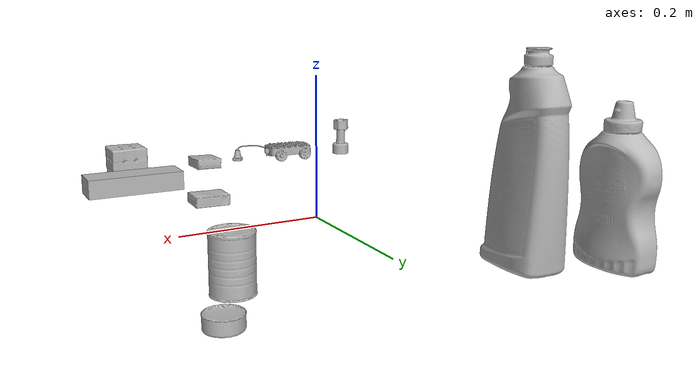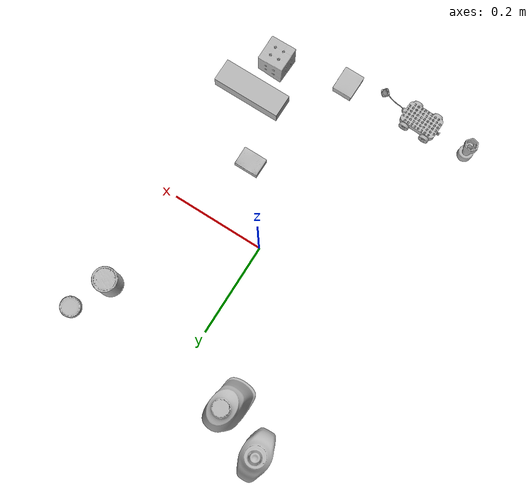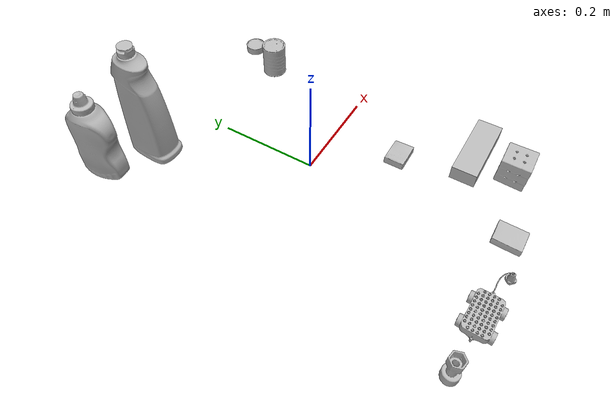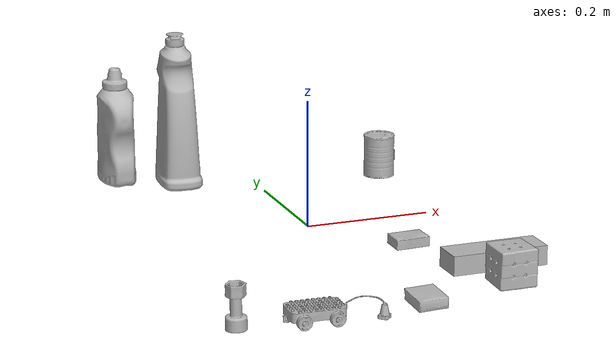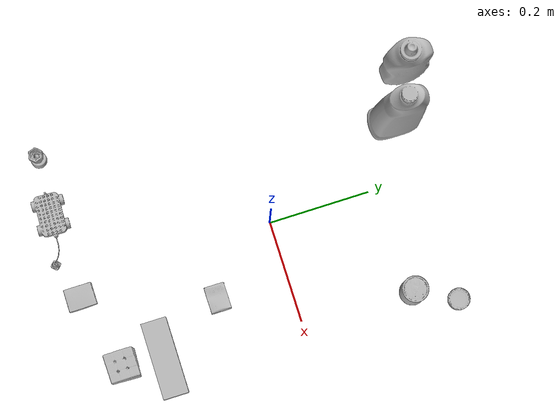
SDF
<?xml version="1.0" ?>
<sdf version="1.4">
  <world name="default">
    <light name="light1" type="point">
      <pose>0 0 1 0 0 0</pose>
      <diffuse>3 3 3 1</diffuse>
      <specular>3 3 3 1</specular>
    </light>
    <light name="light2" type="point">
      <pose>0 0.5 2 0 0 0</pose>
      <diffuse>1 1 1 1</diffuse>
      <specular>1 1 1 1</specular>
    </light>
    <light name="light3" type="point">
      <pose>0 0.5 2 0 0 0</pose>
      <diffuse>3 3 3 1</diffuse>
      <specular>3 3 3 1</specular>
    </light>
    <scene>
      <ambient>0.7 0.7 0.7</ambient>
    </scene>
    <model name="bottle1">
      <link name="link_bottle1">
        <collision name="default">
          <geometry>
            <mesh>
              <uri>model://mustard_bottle/collision_meshes/collision.obj</uri>
              <scale>1.0 1.0 1.0</scale>
            </mesh>
          </geometry>
          <surface>
            <friction>
              <ode>
                <mu>0.5</mu>
                <mu2>0.5</mu2>
              </ode>
            </friction>
          </surface>
        </collision>
        <visual name="default">
          <geometry>
            <mesh>
              <uri>model://mustard_bottle/visual_meshes/visual.dae</uri>
              <scale>1.0 1.0 1.0</scale>
            </mesh>
          </geometry>
        </visual>
        <inertial>
          <mass>0.7866348028182983</mass>
          <pose>0.0005032454500906169 -0.00015647400869056582 -0.0174757931381464 0.00041823249995057767 0.0009465787698991903 0.02485370186883952</pose>
          <inertia>
            <ixx>0.0021843775</ixx>
            <iyy>0.0019166061</iyy>
            <izz>0.0005756938</izz>
            <ixy>0</ixy>
            <ixz>0</ixz>
            <iyz>0</iyz>
          </inertia>
        </inertial>
      </link>
      <pose>-0.2108040750026703 0.3396053612232208 0.09615203738212585 1.3229311704805442e-05 1.4105627105482808e-05 0.03556944717608044</pose>
    </model>
    <model name="bottle2">
      <link name="link_bottle2">
        <collision name="default">
          <geometry>
            <mesh>
              <uri>model://bleach_cleanser/collision_meshes/collision.obj</uri>
              <scale>1.0 1.0 1.0</scale>
            </mesh>
          </geometry>
          <surface>
            <friction>
              <ode>
                <mu>0.5</mu>
                <mu2>0.5</mu2>
              </ode>
            </friction>
          </surface>
        </collision>
        <visual name="default">
          <geometry>
            <mesh>
              <uri>model://bleach_cleanser/visual_meshes/visual.dae</uri>
              <scale>1.0 1.0 1.0</scale>
            </mesh>
          </geometry>
        </visual>
        <inertial>
          <mass>1.5776710510253906</mass>
          <pose>0.00012193183647468686 0.003783883061259985 -0.02442161552608013 -0.07381671362264838 0.0004201168949340897 -0.006875045535038288</pose>
          <inertia>
            <ixx>0.007678755</ixx>
            <iyy>0.0071554743</iyy>
            <izz>0.0013128674</izz>
            <ixy>0</ixy>
            <ixz>0</ixz>
            <iyz>0</iyz>
          </inertia>
        </inertial>
      </link>
      <pose>-0.11920914053916931 0.29016461968421936 0.12576644122600555 -0.0034763713305918605 0.004522792153797232 -0.02645728521903561</pose>
    </model>
    <model name="toy1">
      <link name="link_toy1">
        <collision name="default">
          <geometry>
            <mesh>
              <uri>model://g_lego_duplo/collision_meshes/collision.obj</uri>
              <scale>0.5 0.5 0.5</scale>
            </mesh>
          </geometry>
          <surface>
            <friction>
              <ode>
                <mu>0.5</mu>
                <mu2>0.5</mu2>
              </ode>
            </friction>
          </surface>
        </collision>
        <visual name="default">
          <geometry>
            <mesh>
              <uri>model://g_lego_duplo/visual_meshes/visual.dae</uri>
              <scale>0.5 0.5 0.5</scale>
            </mesh>
          </geometry>
        </visual>
        <inertial>
          <mass>0.06580430269241333</mass>
          <pose>-0.025023844093084335 0.0008777321199886501 0.0019403373589739203 0.010962977320182745 0.038108249742412996 -0.09653031078073558</pose>
          <inertia>
            <ixx>2.3837789e-05</ixx>
            <iyy>7.206929e-05</iyy>
            <izz>9.016138e-05</izz>
            <ixy>0</ixy>
            <ixz>0</ixz>
            <iyz>0</iyz>
          </inertia>
        </inertial>
      </link>
      <pose>-0.10972067713737488 -0.40186965465545654 0.014996823854744434 -6.247243239286998e-05 -0.003688312350474646 -0.038634064938309176</pose>
    </model>
    <model name="toy2">
      <link name="link_toy2">
        <collision name="default">
          <geometry>
            <mesh>
              <uri>model://c_toy_airplane/collision_meshes/collision.obj</uri>
              <scale>1.0 1.0 1.0</scale>
            </mesh>
          </geometry>
          <surface>
            <friction>
              <ode>
                <mu>0.5</mu>
                <mu2>0.5</mu2>
              </ode>
            </friction>
          </surface>
        </collision>
        <visual name="default">
          <geometry>
            <mesh>
              <uri>model://c_toy_airplane/visual_meshes/visual.dae</uri>
              <scale>1.0 1.0 1.0</scale>
            </mesh>
          </geometry>
        </visual>
        <inertial>
          <mass>0.012545601464807987</mass>
          <pose>-0.00023024262918625027 -4.4310368707556336e-07 -0.0060805282555520535 -0.006192226732466636 -0.01679790977646328 0.7654621556572541</pose>
          <inertia>
            <ixx>5.760684e-06</ixx>
            <iyy>5.744425e-06</iyy>
            <izz>1.3524945e-06</izz>
            <ixy>0</ixy>
            <ixz>0</ixz>
            <iyz>0</iyz>
          </inertia>
        </inertial>
      </link>
      <pose>-0.24999184906482697 -0.3899896740913391 0.0335124246776104 -0.00013407715628568583 -1.56142196310315e-05 0.07182204183745079</pose>
    </model>
    <model name="can1">
      <link name="link_can1">
        <collision name="default">
          <geometry>
            <mesh>
              <uri>model://tuna_fish_can/collision_meshes/collision.obj</uri>
              <scale>0.5 0.5 0.5</scale>
            </mesh>
          </geometry>
          <surface>
            <friction>
              <ode>
                <mu>0.5</mu>
                <mu2>0.5</mu2>
              </ode>
            </friction>
          </surface>
        </collision>
        <visual name="default">
          <geometry>
            <mesh>
              <uri>model://tuna_fish_can/visual_meshes/visual.dae</uri>
              <scale>0.5 0.5 0.5</scale>
            </mesh>
          </geometry>
        </visual>
        <inertial>
          <mass>0.0216250978410244</mass>
          <pose>-2.036200021393597e-05 -7.256498065544292e-06 -0.0005269024986773729 -0.0017944779234091367 0.00017161663308651613 0.24053681665098822</pose>
          <inertia>
            <ixx>2.923745e-06</ixx>
            <iyy>2.9115588e-06</iyy>
            <izz>5.002946e-06</izz>
            <ixy>0</ixy>
            <ixz>0</ixz>
            <iyz>0</iyz>
          </inertia>
        </inertial>
      </link>
      <pose>0.24997302889823914 0.30002039670944214 0.008519996888935566 -2.274080384774483e-08 1.1202848251310499e-08 0.09097133787929403</pose>
    </model>
    <model name="can2">
      <link name="link_can2">
        <collision name="default">
          <geometry>
            <mesh>
              <uri>model://master_chef_can/collision_meshes/collision.obj</uri>
              <scale>0.5 0.5 0.5</scale>
            </mesh>
          </geometry>
          <surface>
            <friction>
              <ode>
                <mu>0.5</mu>
                <mu2>0.5</mu2>
              </ode>
            </friction>
          </surface>
        </collision>
        <visual name="default">
          <geometry>
            <mesh>
              <uri>model://master_chef_can/visual_meshes/visual.dae</uri>
              <scale>0.5 0.5 0.5</scale>
            </mesh>
          </geometry>
        </visual>
        <inertial>
          <mass>0.16779577732086182</mass>
          <pose>-4.661964703700505e-05 1.3926845099376806e-07 -5.080012488178909e-05 -0.001799515621871614 0.0006479176547847844 -0.610266079213139</pose>
          <inertia>
            <ixx>9.848473e-05</ixx>
            <iyy>9.77599e-05</iyy>
            <izz>5.442035e-05</izz>
            <ixy>0</ixy>
            <ixz>0</ixz>
            <iyz>0</iyz>
          </inertia>
        </inertial>
      </link>
      <pose>0.2101203054189682 0.22008706629276276 0.03530198335647583 -1.3704378591969951e-06 -7.682831979058037e-07 0.022197963547450874</pose>
    </model>
    <model name="box1">
      <link name="link_box1">
        <collision name="default">
          <geometry>
            <mesh>
              <uri>model://rubiks_cube/collision_meshes/collision.obj</uri>
              <scale>1.0 1.0 1.0</scale>
            </mesh>
          </geometry>
          <surface>
            <friction>
              <ode>
                <mu>0.5</mu>
                <mu2>0.5</mu2>
              </ode>
            </friction>
          </surface>
        </collision>
        <visual name="default">
          <geometry>
            <mesh>
              <uri>model://rubiks_cube/visual_meshes/visual.dae</uri>
              <scale>1.0 1.0 1.0</scale>
            </mesh>
          </geometry>
        </visual>
        <inertial>
          <mass>0.232398122549057</mass>
          <pose>2.6721041649580002e-05 5.256967051536776e-05 -7.264316082000732e-06 -0.05467303663832053 -0.0981402329670775 -0.034454960240128486</pose>
          <inertia>
            <ixx>0.00012841556</ixx>
            <iyy>0.00012781669</iyy>
            <izz>0.00012947968</izz>
            <ixy>0</ixy>
            <ixz>0</ixz>
            <iyz>0</iyz>
          </inertia>
        </inertial>
      </link>
      <pose>0.17993149161338806 -0.3502274453639984 0.028679007664322853 -3.434251585927016e-08 -1.1641109806088092e-10 2.45170638542912e-07</pose>
    </model>
    <model name="box2">
      <link name="link_box2">
        <collision name="default">
          <geometry>
            <mesh>
              <uri>model://jenga/collision_meshes/collision.obj</uri>
              <scale>1.0 1.0 1.0</scale>
            </mesh>
          </geometry>
          <surface>
            <friction>
              <ode>
                <mu>0.5</mu>
                <mu2>0.5</mu2>
              </ode>
            </friction>
          </surface>
        </collision>
        <visual name="default">
          <geometry>
            <mesh>
              <uri>model://jenga/visual_meshes/visual.dae</uri>
              <scale>1.0 1.0 1.0</scale>
            </mesh>
          </geometry>
        </visual>
        <inertial>
          <mass>0.2088489830493927</mass>
          <pose>-2.502855807051674e-07 -0.0001025000965455547 -4.092339804628864e-05 0.0 -7.342154049184251e-07 0.0</pose>
          <inertia>
            <ixx>5.7793575e-05</ixx>
            <iyy>0.00039160773</iyy>
            <izz>0.00041807455</izz>
            <ixy>0</ixy>
            <ixz>0</ixz>
            <iyz>0</iyz>
          </inertia>
        </inertial>
      </link>
      <pose>0.19000044465065002 -0.2698974907398224 0.014999995008111 7.823522276142026e-09 1.2147427802068344e-10 2.7630742139215243e-08</pose>
    </model>
    <model name="box3">
      <link name="link_box3">
        <collision name="default">
          <geometry>
            <mesh>
              <uri>model://cracker_box/collision_meshes/collision.obj</uri>
              <scale>0.25 0.25 0.25</scale>
            </mesh>
          </geometry>
          <surface>
            <friction>
              <ode>
                <mu>0.5</mu>
                <mu2>0.5</mu2>
              </ode>
            </friction>
          </surface>
        </collision>
        <visual name="default">
          <geometry>
            <mesh>
              <uri>model://cracker_box/visual_meshes/visual.dae</uri>
              <scale>0.25 0.25 0.25</scale>
            </mesh>
          </geometry>
        </visual>
        <inertial>
          <mass>0.039105094969272614</mass>
          <pose>0.00023660340229980648 6.358561222441494e-05 -0.00042573834070935845 -0.0003162078884583708 -0.011106488668689832 0.0025467950032832675</pose>
          <inertia>
            <ixx>6.216619e-06</ixx>
            <iyy>1.0264859e-05</iyy>
            <izz>1.4648894e-05</izz>
            <ixy>0</ixy>
            <ixz>0</ixz>
            <iyz>0</iyz>
          </inertia>
        </inertial>
      </link>
      <pose>0.10993339121341705 -0.1398499459028244 0.009120451286435127 -0.011788942062347409 -0.007366498248017271 0.0001283289456814324</pose>
    </model>
    <model name="box4">
      <link name="link_box4">
        <collision name="default">
          <geometry>
            <mesh>
              <uri>model://pudding_box/collision_meshes/collision.obj</uri>
              <scale>0.5 0.5 0.5</scale>
            </mesh>
          </geometry>
          <surface>
            <friction>
              <ode>
                <mu>0.5</mu>
                <mu2>0.5</mu2>
              </ode>
            </friction>
          </surface>
        </collision>
        <visual name="default">
          <geometry>
            <mesh>
              <uri>model://pudding_box/visual_meshes/visual.dae</uri>
              <scale>0.5 0.5 0.5</scale>
            </mesh>
          </geometry>
        </visual>
        <inertial>
          <mass>0.03813362866640091</mass>
          <pose>0.00024474109522998333 0.00040339428232982755 -0.0002594413817860186 0.005213101815861678 -0.006603796390356506 0.020079825165494957</pose>
          <inertia>
            <ixx>1.0777026e-05</ixx>
            <iyy>7.25086e-06</iyy>
            <izz>1.5915095e-05</izz>
            <ixy>0</ixy>
            <ixz>0</ixz>
            <iyz>0</iyz>
          </inertia>
        </inertial>
      </link>
      <pose>0.029741350561380386 -0.39025211334228516 0.009862902574241161 0.02234860914308323 -0.011391698484799907 -9.415165898032627e-05</pose>
    </model>
  </world>
</sdf>
